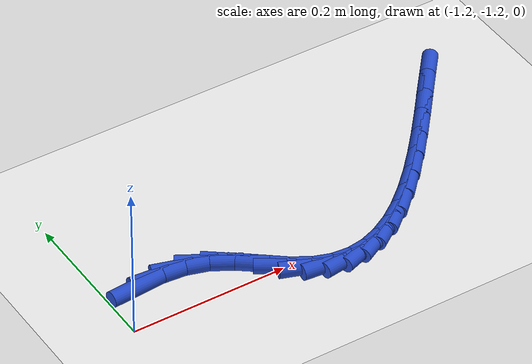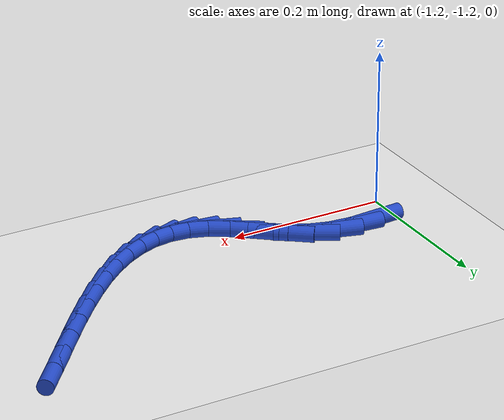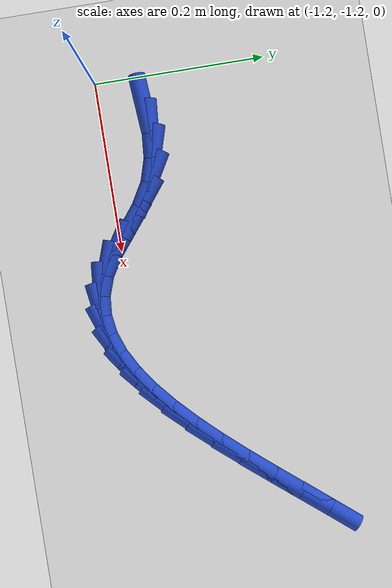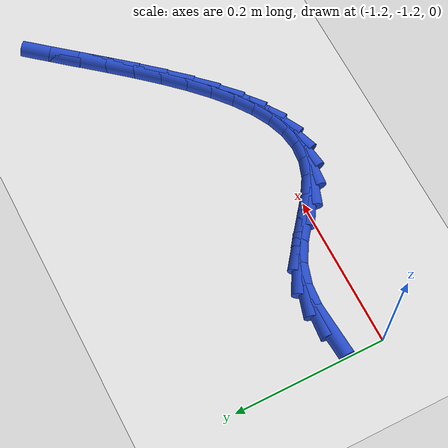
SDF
<sdf version="1.6">
 <world name="default">
  <model name="ground_plane">
   <static>1</static>
   <link name="link">
    <collision name="collision">
     <geometry><plane><normal>0 0 1</normal><size>100 100</size></plane></geometry>
     <surface><friction><ode><mu>100</mu><mu2>50</mu2></ode></friction></surface>
    </collision>
    <visual name="visual">
     <cast_shadows>0</cast_shadows>
     <geometry><plane><normal>0 0 1</normal><size>100 100</size></plane></geometry>
     <material>
      <script><uri>file://media/materials/scripts/gazebo.material</uri><name>Gazebo/WhiteGlow</name></script>
     </material>
    </visual>
   </link>
  </model>
  <model name="line">
   <link name="link_179">
    <pose>-1.1602150321526636 -1.1464656321572484 0.01 0 1.57 0.0761760650837113</pose>
    <collision name="collision">
     <geometry><cylinder><radius>0.01</radius><length>0.08</length></cylinder></geometry>
    </collision>
    <visual name="visual">
     <material>
      <script><name>Gazebo/Blue</name><uri>file://media/materials/scripts/gazebo.material</uri></script>
     </material>
     <geometry><cylinder><radius>0.01</radius><length>0.08</length></cylinder></geometry>
    </visual>
   </link>
   <link name="link_180">
    <pose>-1.1299231205283171 -1.1441536397905876 0.01 0 1.57 -0.08334503241493241</pose>
    <collision name="collision">
     <geometry><cylinder><radius>0.01</radius><length>0.08</length></cylinder></geometry>
    </collision>
    <visual name="visual">
     <material>
      <script><name>Gazebo/Blue</name><uri>file://media/materials/scripts/gazebo.material</uri></script>
     </material>
     <geometry><cylinder><radius>0.01</radius><length>0.08</length></cylinder></geometry>
    </visual>
   </link>
   <link name="link_181">
    <pose>-1.1007894283775388 -1.1465874262656146 0.01 0 1.57 -0.290687206982561</pose>
    <collision name="collision">
     <geometry><cylinder><radius>0.01</radius><length>0.08</length></cylinder></geometry>
    </collision>
    <visual name="visual">
     <material>
      <script><name>Gazebo/Blue</name><uri>file://media/materials/scripts/gazebo.material</uri></script>
     </material>
     <geometry><cylinder><radius>0.01</radius><length>0.08</length></cylinder></geometry>
    </visual>
   </link>
   <link name="link_182">
    <pose>-1.073110969678591 -1.154867751144667 0.01 0 1.57 -0.5200034817494393</pose>
    <collision name="collision">
     <geometry><cylinder><radius>0.01</radius><length>0.08</length></cylinder></geometry>
    </collision>
    <visual name="visual">
     <material>
      <script><name>Gazebo/Blue</name><uri>file://media/materials/scripts/gazebo.material</uri></script>
     </material>
     <geometry><cylinder><radius>0.01</radius><length>0.08</length></cylinder></geometry>
    </visual>
   </link>
   <link name="link_183">
    <pose>-1.0471287686205097 -1.1697442878565891 0.01 0 1.57 -0.6579566616596113</pose>
    <collision name="collision">
     <geometry><cylinder><radius>0.01</radius><length>0.08</length></cylinder></geometry>
    </collision>
    <visual name="visual">
     <material>
      <script><name>Gazebo/Blue</name><uri>file://media/materials/scripts/gazebo.material</uri></script>
     </material>
     <geometry><cylinder><radius>0.01</radius><length>0.08</length></cylinder></geometry>
    </visual>
   </link>
   <link name="link_184">
    <pose>-1.022567102281418 -1.188726427134475 0.01 0 1.57 -0.6719140849329234</pose>
    <collision name="collision">
     <geometry><cylinder><radius>0.01</radius><length>0.08</length></cylinder></geometry>
    </collision>
    <visual name="visual">
     <material>
      <script><name>Gazebo/Blue</name><uri>file://media/materials/scripts/gazebo.material</uri></script>
     </material>
     <geometry><cylinder><radius>0.01</radius><length>0.08</length></cylinder></geometry>
    </visual>
   </link>
   <link name="link_185">
    <pose>-0.9988711661978129 -1.2075735681373583 0.01 0 1.57 -0.5558537765190369</pose>
    <collision name="collision">
     <geometry><cylinder><radius>0.01</radius><length>0.08</length></cylinder></geometry>
    </collision>
    <visual name="visual">
     <material>
      <script><name>Gazebo/Blue</name><uri>file://media/materials/scripts/gazebo.material</uri></script>
     </material>
     <geometry><cylinder><radius>0.01</radius><length>0.08</length></cylinder></geometry>
    </visual>
   </link>
   <link name="link_186">
    <pose>-0.97549134435077 -1.222096844971506 0.01 0 1.57 -0.3345567377362995</pose>
    <collision name="collision">
     <geometry><cylinder><radius>0.01</radius><length>0.08</length></cylinder></geometry>
    </collision>
    <visual name="visual">
     <material>
      <script><name>Gazebo/Blue</name><uri>file://media/materials/scripts/gazebo.material</uri></script>
     </material>
     <geometry><cylinder><radius>0.01</radius><length>0.08</length></cylinder></geometry>
    </visual>
   </link>
   <link name="link_187">
    <pose>-0.9521210384634559 -1.2302209291172264 0.01 0 1.57 -0.08991130131310493</pose>
    <collision name="collision">
     <geometry><cylinder><radius>0.01</radius><length>0.08</length></cylinder></geometry>
    </collision>
    <visual name="visual">
     <material>
      <script><name>Gazebo/Blue</name><uri>file://media/materials/scripts/gazebo.material</uri></script>
     </material>
     <geometry><cylinder><radius>0.01</radius><length>0.08</length></cylinder></geometry>
    </visual>
   </link>
   <link name="link_188">
    <pose>-0.9287363517319981 -1.2323291608073617 0.01 0 1.57 0.14365819443122568</pose>
    <collision name="collision">
     <geometry><cylinder><radius>0.01</radius><length>0.08</length></cylinder></geometry>
    </collision>
    <visual name="visual">
     <material>
      <script><name>Gazebo/Blue</name><uri>file://media/materials/scripts/gazebo.material</uri></script>
     </material>
     <geometry><cylinder><radius>0.01</radius><length>0.08</length></cylinder></geometry>
    </visual>
   </link>
   <link name="link_189">
    <pose>-0.9053292939088589 -1.228943220385285 0.01 0 1.57 0.3425669579872708</pose>
    <collision name="collision">
     <geometry><cylinder><radius>0.01</radius><length>0.08</length></cylinder></geometry>
    </collision>
    <visual name="visual">
     <material>
      <script><name>Gazebo/Blue</name><uri>file://media/materials/scripts/gazebo.material</uri></script>
     </material>
     <geometry><cylinder><radius>0.01</radius><length>0.08</length></cylinder></geometry>
    </visual>
   </link>
   <link name="link_190">
    <pose>-0.8818918747464994 -1.2205847881943688 0.01 0 1.57 0.4994871479359502</pose>
    <collision name="collision">
     <geometry><cylinder><radius>0.01</radius><length>0.08</length></cylinder></geometry>
    </collision>
    <visual name="visual">
     <material>
      <script><name>Gazebo/Blue</name><uri>file://media/materials/scripts/gazebo.material</uri></script>
     </material>
     <geometry><cylinder><radius>0.01</radius><length>0.08</length></cylinder></geometry>
    </visual>
   </link>
   <link name="link_191">
    <pose>-0.8584161039973807 -1.2077755445779847 0.01 0 1.57 0.618469959097186</pose>
    <collision name="collision">
     <geometry><cylinder><radius>0.01</radius><length>0.08</length></cylinder></geometry>
    </collision>
    <visual name="visual">
     <material>
      <script><name>Gazebo/Blue</name><uri>file://media/materials/scripts/gazebo.material</uri></script>
     </material>
     <geometry><cylinder><radius>0.01</radius><length>0.08</length></cylinder></geometry>
    </visual>
   </link>
   <link name="link_192">
    <pose>-0.8348939914139638 -1.191037169879506 0.01 0 1.57 0.7070947080384757</pose>
    <collision name="collision">
     <geometry><cylinder><radius>0.01</radius><length>0.08</length></cylinder></geometry>
    </collision>
    <visual name="visual">
     <material>
      <script><name>Gazebo/Blue</name><uri>file://media/materials/scripts/gazebo.material</uri></script>
     </material>
     <geometry><cylinder><radius>0.01</radius><length>0.08</length></cylinder></geometry>
    </visual>
   </link>
   <link name="link_193">
    <pose>-0.8113175467487111 -1.1708913444423046 0.01 0 1.57 0.7723891171137555</pose>
    <collision name="collision">
     <geometry><cylinder><radius>0.01</radius><length>0.08</length></cylinder></geometry>
    </collision>
    <visual name="visual">
     <material>
      <script><name>Gazebo/Blue</name><uri>file://media/materials/scripts/gazebo.material</uri></script>
     </material>
     <geometry><cylinder><radius>0.01</radius><length>0.08</length></cylinder></geometry>
    </visual>
   </link>
   <link name="link_194">
    <pose>-0.7876787797540836 -1.147859748609754 0.01 0 1.57 0.8197317667345442</pose>
    <collision name="collision">
     <geometry><cylinder><radius>0.01</radius><length>0.08</length></cylinder></geometry>
    </collision>
    <visual name="visual">
     <material>
      <script><name>Gazebo/Blue</name><uri>file://media/materials/scripts/gazebo.material</uri></script>
     </material>
     <geometry><cylinder><radius>0.01</radius><length>0.08</length></cylinder></geometry>
    </visual>
   </link>
   <link name="link_195">
    <pose>-0.7639697001825423 -1.1224640627252254 0.01 0 1.57 0.8529226074782428</pose>
    <collision name="collision">
     <geometry><cylinder><radius>0.01</radius><length>0.08</length></cylinder></geometry>
    </collision>
    <visual name="visual">
     <material>
      <script><name>Gazebo/Blue</name><uri>file://media/materials/scripts/gazebo.material</uri></script>
     </material>
     <geometry><cylinder><radius>0.01</radius><length>0.08</length></cylinder></geometry>
    </visual>
   </link>
   <link name="link_196">
    <pose>-0.7401823177865485 -1.0952259671320916 0.01 0 1.57 0.8745173048052549</pose>
    <collision name="collision">
     <geometry><cylinder><radius>0.01</radius><length>0.08</length></cylinder></geometry>
    </collision>
    <visual name="visual">
     <material>
      <script><name>Gazebo/Blue</name><uri>file://media/materials/scripts/gazebo.material</uri></script>
     </material>
     <geometry><cylinder><radius>0.01</radius><length>0.08</length></cylinder></geometry>
    </visual>
   </link>
   <link name="link_197">
    <pose>-0.716308642318564 -1.0666671421737255 0.01 0 1.57 0.8861311820133906</pose>
    <collision name="collision">
     <geometry><cylinder><radius>0.01</radius><length>0.08</length></cylinder></geometry>
    </collision>
    <visual name="visual">
     <material>
      <script><name>Gazebo/Blue</name><uri>file://media/materials/scripts/gazebo.material</uri></script>
     </material>
     <geometry><cylinder><radius>0.01</radius><length>0.08</length></cylinder></geometry>
    </visual>
   </link>
   <link name="link_198">
    <pose>-0.6923406835310498 -1.037309268193499 0.01 0 1.57 0.8886505771973939</pose>
    <collision name="collision">
     <geometry><cylinder><radius>0.01</radius><length>0.08</length></cylinder></geometry>
    </collision>
    <visual name="visual">
     <material>
      <script><name>Gazebo/Blue</name><uri>file://media/materials/scripts/gazebo.material</uri></script>
     </material>
     <geometry><cylinder><radius>0.01</radius><length>0.08</length></cylinder></geometry>
    </visual>
   </link>
   <link name="link_199">
    <pose>-0.6682704511764673 -1.007674025534785 0.01 0 1.57 0.8823546540998767</pose>
    <collision name="collision">
     <geometry><cylinder><radius>0.01</radius><length>0.08</length></cylinder></geometry>
    </collision>
    <visual name="visual">
     <material>
      <script><name>Gazebo/Blue</name><uri>file://media/materials/scripts/gazebo.material</uri></script>
     </material>
     <geometry><cylinder><radius>0.01</radius><length>0.08</length></cylinder></geometry>
    </visual>
   </link>
  </model>
 </world>
</sdf>
